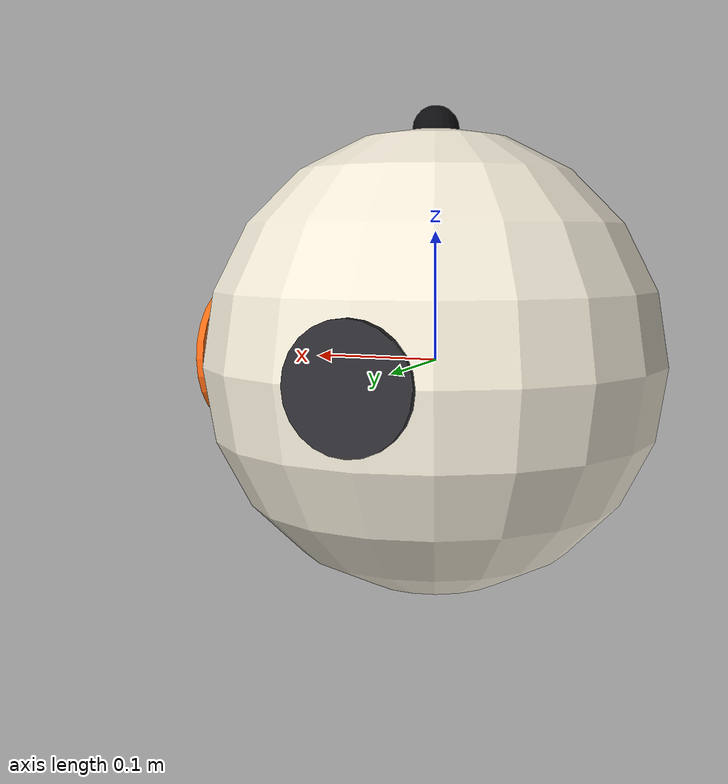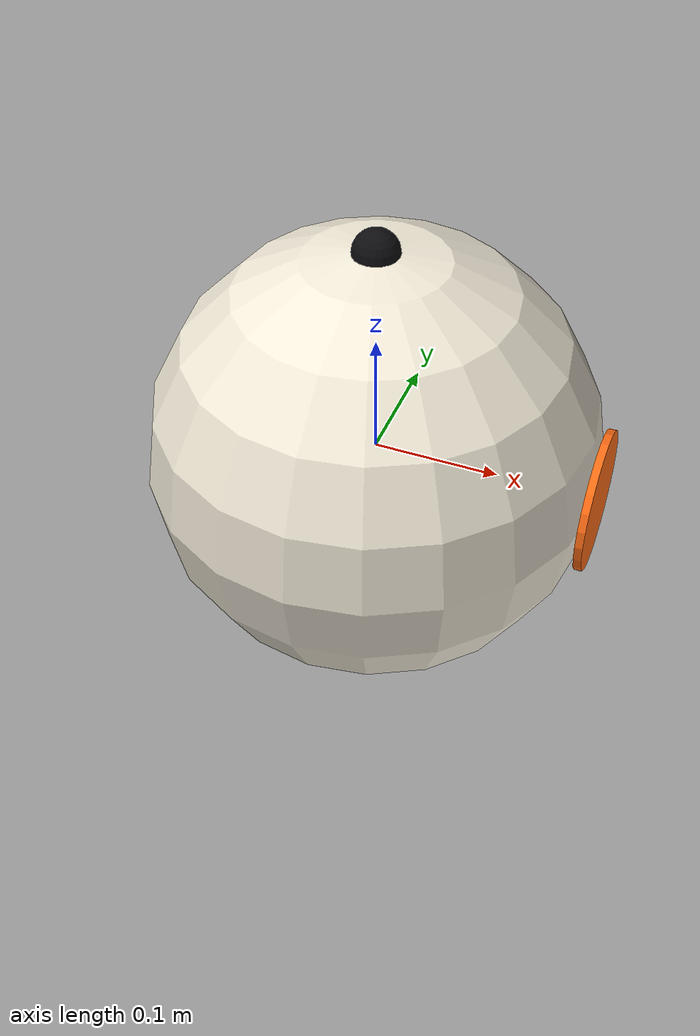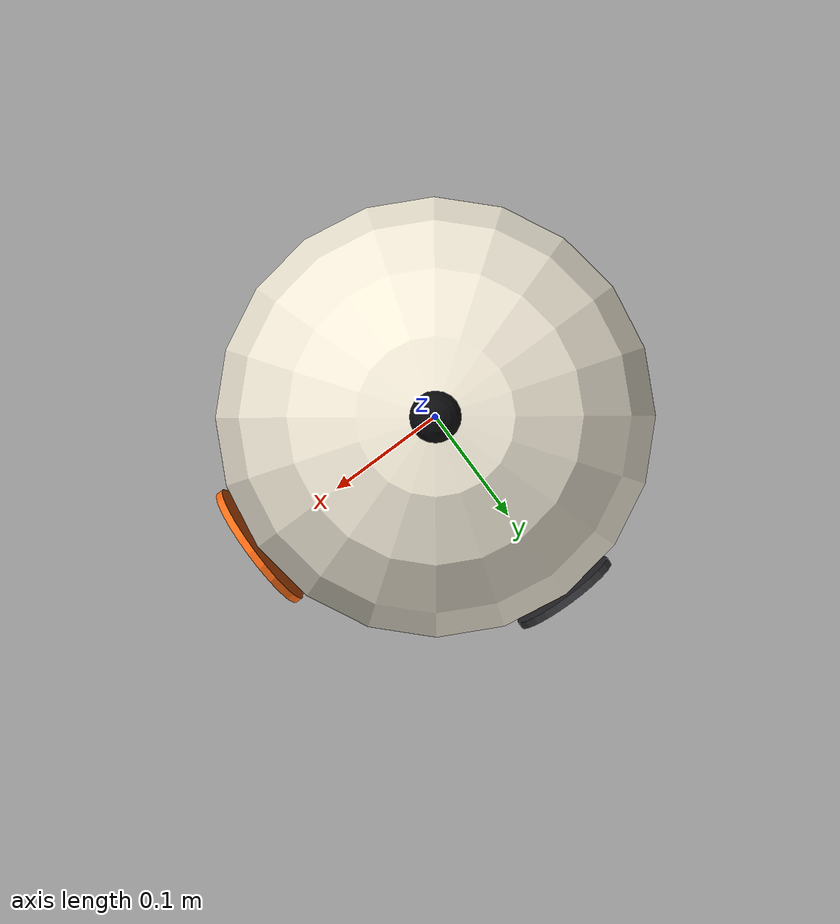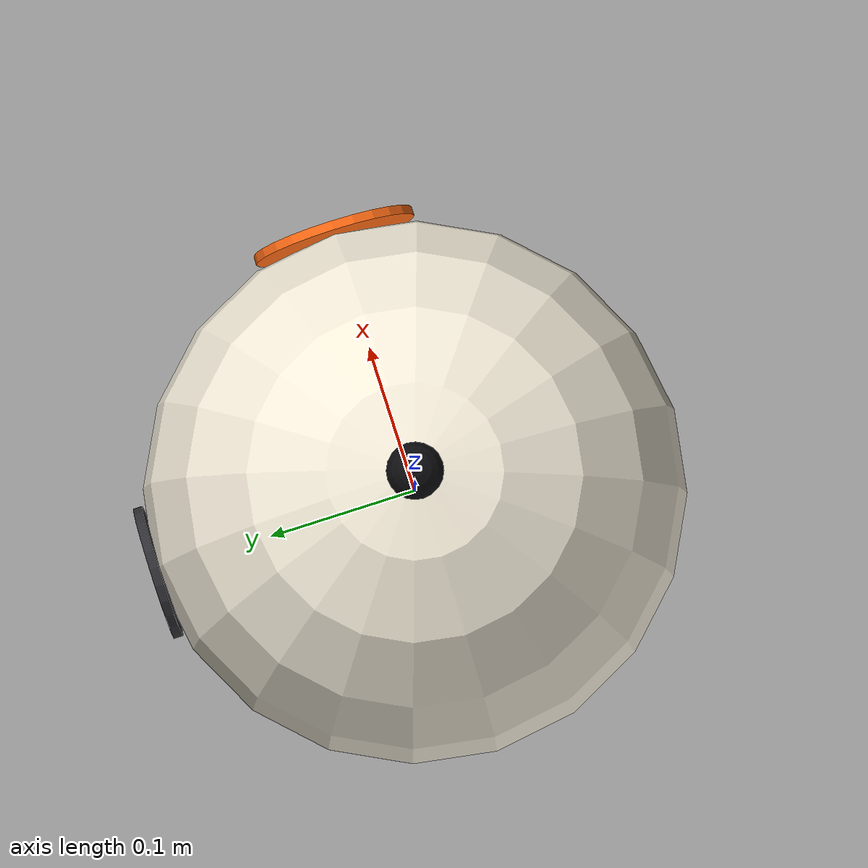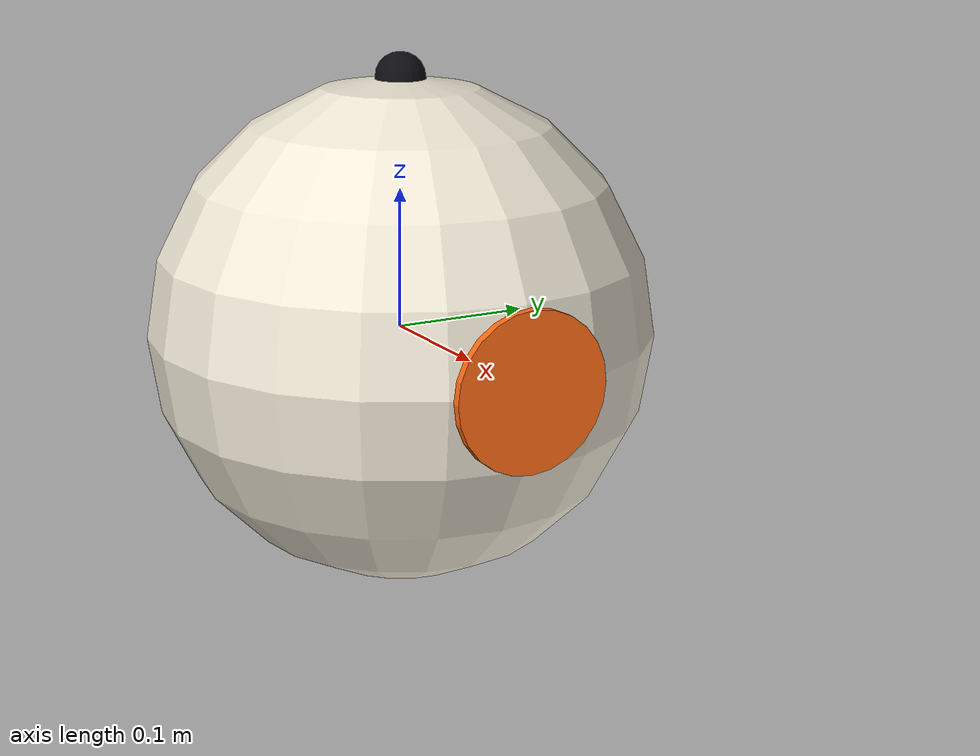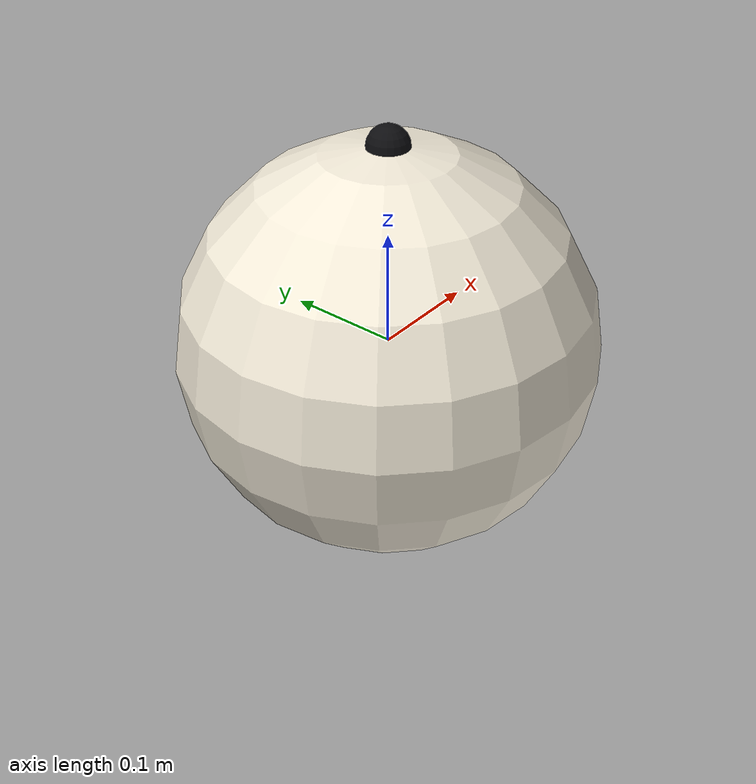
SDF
<?xml version="1.0" ?>
<sdf version="1.10">
  <model name="bb8_rolling_sphere">

    <static>false</static>
    <self_collide>false</self_collide>
    <allow_auto_disable>false</allow_auto_disable>

    <link name="shell">
      <pose>0 0 0 0 0 0</pose>

      <inertial>
        <mass>1.20</mass>
        <!-- Solid sphere approximation: I = 2/5 * m * r^2, r = 0.18m. -->
        <inertia>
          <ixx>0.015552</ixx>
          <ixy>0</ixy>
          <ixz>0</ixz>
          <iyy>0.015552</iyy>
          <iyz>0</iyz>
          <izz>0.015552</izz>
        </inertia>
      </inertial>

      <collision name="shell_collision">
        <geometry>
          <sphere>
            <radius>0.18</radius>
          </sphere>
        </geometry>
        <surface>
          <friction>
            <ode>
              <mu>1.0</mu>
              <mu2>1.0</mu2>
            </ode>
          </friction>
          <bounce>
            <restitution_coefficient>0.05</restitution_coefficient>
            <threshold>0.1</threshold>
          </bounce>
        </surface>
      </collision>

      <visual name="shell_visual">
        <geometry>
          <sphere>
            <radius>0.18</radius>
          </sphere>
        </geometry>
        <material>
          <ambient>0.94 0.91 0.84 1</ambient>
          <diffuse>0.94 0.91 0.84 1</diffuse>
          <specular>0.25 0.25 0.22 1</specular>
        </material>
      </visual>

      <visual name="front_orange_panel">
        <pose>0.178 0 0 0 1.5708 0</pose>
        <geometry>
          <cylinder>
            <radius>0.055</radius>
            <length>0.006</length>
          </cylinder>
        </geometry>
        <material>
          <ambient>1.0 0.42 0.08 1</ambient>
          <diffuse>1.0 0.42 0.08 1</diffuse>
        </material>
      </visual>

      <visual name="left_gray_panel">
        <pose>0 0.178 0 1.5708 0 0</pose>
        <geometry>
          <cylinder>
            <radius>0.045</radius>
            <length>0.006</length>
          </cylinder>
        </geometry>
        <material>
          <ambient>0.18 0.18 0.20 1</ambient>
          <diffuse>0.18 0.18 0.20 1</diffuse>
        </material>
      </visual>

      <visual name="top_reference_dot">
        <pose>0 0 0.178 0 0 0</pose>
        <geometry>
          <sphere>
            <radius>0.018</radius>
          </sphere>
        </geometry>
        <material>
          <ambient>0.05 0.05 0.06 1</ambient>
          <diffuse>0.05 0.05 0.06 1</diffuse>
        </material>
      </visual>
    </link>

    <link name="internal_ballast">
      <pose>0 0 -0.07 0 0 0</pose>
      <inertial>
        <mass>0.45</mass>
        <inertia>
          <ixx>0.00085</ixx>
          <ixy>0</ixy>
          <ixz>0</ixz>
          <iyy>0.00085</iyy>
          <iyz>0</iyz>
          <izz>0.00085</izz>
        </inertia>
      </inertial>
      <visual name="ballast_visual">
        <geometry>
          <box>
            <size>0.12 0.08 0.04</size>
          </box>
        </geometry>
        <material>
          <ambient>0.08 0.08 0.09 0.55</ambient>
          <diffuse>0.08 0.08 0.09 0.55</diffuse>
        </material>
      </visual>
    </link>

    <joint name="ballast_fixed_joint" type="fixed">
      <parent>shell</parent>
      <child>internal_ballast</child>
    </joint>
  </model>
</sdf>
